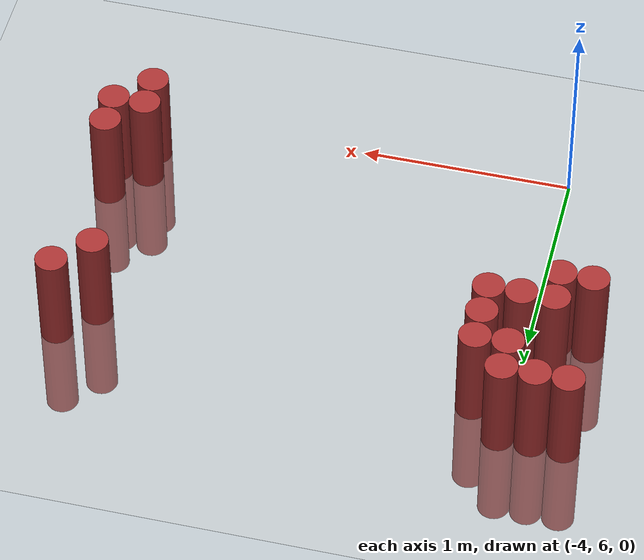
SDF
<sdf version="1.6">
 <world name="world_237">
  <model name="ground_plane">
   <static>1</static>
   <link name="link">
    <collision name="collision">
     <geometry><plane><normal>0 0 1</normal><size>100 100</size></plane></geometry>
     <surface><friction><ode><mu>100</mu><mu2>50</mu2></ode></friction></surface>
    </collision>
    <visual name="visual">
     <cast_shadows>0</cast_shadows>
     <geometry><plane><normal>0 0 1</normal><size>100 100</size></plane></geometry>
     <material>
      <script><uri>file://media/materials/scripts/gazebo.material</uri><name>Gazebo/Grey</name></script>
     </material>
    </visual>
   </link>
  </model>
  <model name="unit_cylinder_133">
   <static>1</static>
   <pose>-4.275000 6.975000 0.000000 0.000000 0.000000 0.000000</pose>
   <link name="link">
    <inertial>
     <mass>1</mass>
     <inertia><ixx>0.145833</ixx><ixy>0</ixy><ixz>0</ixz><iyy>0.145833</iyy><iyz>0</iyz><izz>0.125</izz></inertia>
    </inertial>
    <collision name="collision">
     <geometry><cylinder><radius>0.075000</radius><length>1</length></cylinder></geometry>
    </collision>
    <visual name="visual">
     <geometry><cylinder><radius>0.075000</radius><length>1</length></cylinder></geometry>
     <material>
      <ambient>0.648000 0.192000 0.192000 1</ambient>
      <diffuse>0.648000 0.192000 0.192000 1</diffuse>
     </material>
     <material>
      <script><name>Gazebo/Grey</name><uri>file://media/materials/scripts/gazebo.material</uri></script>
     </material>
    </visual>
   </link>
  </model>
  <model name="unit_cylinder_134">
   <static>1</static>
   <pose>-4.275000 7.575000 0.000000 0.000000 0.000000 0.000000</pose>
   <link name="link">
    <inertial>
     <mass>1</mass>
     <inertia><ixx>0.145833</ixx><ixy>0</ixy><ixz>0</ixz><iyy>0.145833</iyy><iyz>0</iyz><izz>0.125</izz></inertia>
    </inertial>
    <collision name="collision">
     <geometry><cylinder><radius>0.075000</radius><length>1</length></cylinder></geometry>
    </collision>
    <visual name="visual">
     <geometry><cylinder><radius>0.075000</radius><length>1</length></cylinder></geometry>
     <material>
      <ambient>0.648000 0.192000 0.192000 1</ambient>
      <diffuse>0.648000 0.192000 0.192000 1</diffuse>
     </material>
     <material>
      <script><name>Gazebo/Grey</name><uri>file://media/materials/scripts/gazebo.material</uri></script>
     </material>
    </visual>
   </link>
  </model>
  <model name="unit_cylinder_143">
   <static>1</static>
   <pose>-4.125000 6.975000 0.000000 0.000000 0.000000 0.000000</pose>
   <link name="link">
    <inertial>
     <mass>1</mass>
     <inertia><ixx>0.145833</ixx><ixy>0</ixy><ixz>0</ixz><iyy>0.145833</iyy><iyz>0</iyz><izz>0.125</izz></inertia>
    </inertial>
    <collision name="collision">
     <geometry><cylinder><radius>0.075000</radius><length>1</length></cylinder></geometry>
    </collision>
    <visual name="visual">
     <geometry><cylinder><radius>0.075000</radius><length>1</length></cylinder></geometry>
     <material>
      <ambient>0.648000 0.192000 0.192000 1</ambient>
      <diffuse>0.648000 0.192000 0.192000 1</diffuse>
     </material>
     <material>
      <script><name>Gazebo/Grey</name><uri>file://media/materials/scripts/gazebo.material</uri></script>
     </material>
    </visual>
   </link>
  </model>
  <model name="unit_cylinder_144">
   <static>1</static>
   <pose>-4.125000 7.125000 0.000000 0.000000 0.000000 0.000000</pose>
   <link name="link">
    <inertial>
     <mass>1</mass>
     <inertia><ixx>0.145833</ixx><ixy>0</ixy><ixz>0</ixz><iyy>0.145833</iyy><iyz>0</iyz><izz>0.125</izz></inertia>
    </inertial>
    <collision name="collision">
     <geometry><cylinder><radius>0.075000</radius><length>1</length></cylinder></geometry>
    </collision>
    <visual name="visual">
     <geometry><cylinder><radius>0.075000</radius><length>1</length></cylinder></geometry>
     <material>
      <ambient>0.648000 0.192000 0.192000 1</ambient>
      <diffuse>0.648000 0.192000 0.192000 1</diffuse>
     </material>
     <material>
      <script><name>Gazebo/Grey</name><uri>file://media/materials/scripts/gazebo.material</uri></script>
     </material>
    </visual>
   </link>
  </model>
  <model name="unit_cylinder_145">
   <static>1</static>
   <pose>-4.125000 7.575000 0.000000 0.000000 0.000000 0.000000</pose>
   <link name="link">
    <inertial>
     <mass>1</mass>
     <inertia><ixx>0.145833</ixx><ixy>0</ixy><ixz>0</ixz><iyy>0.145833</iyy><iyz>0</iyz><izz>0.125</izz></inertia>
    </inertial>
    <collision name="collision">
     <geometry><cylinder><radius>0.075000</radius><length>1</length></cylinder></geometry>
    </collision>
    <visual name="visual">
     <geometry><cylinder><radius>0.075000</radius><length>1</length></cylinder></geometry>
     <material>
      <ambient>0.648000 0.192000 0.192000 1</ambient>
      <diffuse>0.648000 0.192000 0.192000 1</diffuse>
     </material>
     <material>
      <script><name>Gazebo/Grey</name><uri>file://media/materials/scripts/gazebo.material</uri></script>
     </material>
    </visual>
   </link>
  </model>
  <model name="unit_cylinder_148">
   <static>1</static>
   <pose>-3.975000 7.125000 0.000000 0.000000 0.000000 0.000000</pose>
   <link name="link">
    <inertial>
     <mass>1</mass>
     <inertia><ixx>0.145833</ixx><ixy>0</ixy><ixz>0</ixz><iyy>0.145833</iyy><iyz>0</iyz><izz>0.125</izz></inertia>
    </inertial>
    <collision name="collision">
     <geometry><cylinder><radius>0.075000</radius><length>1</length></cylinder></geometry>
    </collision>
    <visual name="visual">
     <geometry><cylinder><radius>0.075000</radius><length>1</length></cylinder></geometry>
     <material>
      <ambient>0.648000 0.192000 0.192000 1</ambient>
      <diffuse>0.648000 0.192000 0.192000 1</diffuse>
     </material>
     <material>
      <script><name>Gazebo/Grey</name><uri>file://media/materials/scripts/gazebo.material</uri></script>
     </material>
    </visual>
   </link>
  </model>
  <model name="unit_cylinder_149">
   <static>1</static>
   <pose>-3.975000 7.425000 0.000000 0.000000 0.000000 0.000000</pose>
   <link name="link">
    <inertial>
     <mass>1</mass>
     <inertia><ixx>0.145833</ixx><ixy>0</ixy><ixz>0</ixz><iyy>0.145833</iyy><iyz>0</iyz><izz>0.125</izz></inertia>
    </inertial>
    <collision name="collision">
     <geometry><cylinder><radius>0.075000</radius><length>1</length></cylinder></geometry>
    </collision>
    <visual name="visual">
     <geometry><cylinder><radius>0.075000</radius><length>1</length></cylinder></geometry>
     <material>
      <ambient>0.648000 0.192000 0.192000 1</ambient>
      <diffuse>0.648000 0.192000 0.192000 1</diffuse>
     </material>
     <material>
      <script><name>Gazebo/Grey</name><uri>file://media/materials/scripts/gazebo.material</uri></script>
     </material>
    </visual>
   </link>
  </model>
  <model name="unit_cylinder_150">
   <static>1</static>
   <pose>-3.975000 7.575000 0.000000 0.000000 0.000000 0.000000</pose>
   <link name="link">
    <inertial>
     <mass>1</mass>
     <inertia><ixx>0.145833</ixx><ixy>0</ixy><ixz>0</ixz><iyy>0.145833</iyy><iyz>0</iyz><izz>0.125</izz></inertia>
    </inertial>
    <collision name="collision">
     <geometry><cylinder><radius>0.075000</radius><length>1</length></cylinder></geometry>
    </collision>
    <visual name="visual">
     <geometry><cylinder><radius>0.075000</radius><length>1</length></cylinder></geometry>
     <material>
      <ambient>0.648000 0.192000 0.192000 1</ambient>
      <diffuse>0.648000 0.192000 0.192000 1</diffuse>
     </material>
     <material>
      <script><name>Gazebo/Grey</name><uri>file://media/materials/scripts/gazebo.material</uri></script>
     </material>
    </visual>
   </link>
  </model>
  <model name="unit_cylinder_151">
   <static>1</static>
   <pose>-3.825000 7.125000 0.000000 0.000000 0.000000 0.000000</pose>
   <link name="link">
    <inertial>
     <mass>1</mass>
     <inertia><ixx>0.145833</ixx><ixy>0</ixy><ixz>0</ixz><iyy>0.145833</iyy><iyz>0</iyz><izz>0.125</izz></inertia>
    </inertial>
    <collision name="collision">
     <geometry><cylinder><radius>0.075000</radius><length>1</length></cylinder></geometry>
    </collision>
    <visual name="visual">
     <geometry><cylinder><radius>0.075000</radius><length>1</length></cylinder></geometry>
     <material>
      <ambient>0.648000 0.192000 0.192000 1</ambient>
      <diffuse>0.648000 0.192000 0.192000 1</diffuse>
     </material>
     <material>
      <script><name>Gazebo/Grey</name><uri>file://media/materials/scripts/gazebo.material</uri></script>
     </material>
    </visual>
   </link>
  </model>
  <model name="unit_cylinder_152">
   <static>1</static>
   <pose>-3.825000 7.275000 0.000000 0.000000 0.000000 0.000000</pose>
   <link name="link">
    <inertial>
     <mass>1</mass>
     <inertia><ixx>0.145833</ixx><ixy>0</ixy><ixz>0</ixz><iyy>0.145833</iyy><iyz>0</iyz><izz>0.125</izz></inertia>
    </inertial>
    <collision name="collision">
     <geometry><cylinder><radius>0.075000</radius><length>1</length></cylinder></geometry>
    </collision>
    <visual name="visual">
     <geometry><cylinder><radius>0.075000</radius><length>1</length></cylinder></geometry>
     <material>
      <ambient>0.648000 0.192000 0.192000 1</ambient>
      <diffuse>0.648000 0.192000 0.192000 1</diffuse>
     </material>
     <material>
      <script><name>Gazebo/Grey</name><uri>file://media/materials/scripts/gazebo.material</uri></script>
     </material>
    </visual>
   </link>
  </model>
  <model name="unit_cylinder_153">
   <static>1</static>
   <pose>-3.825000 7.425000 0.000000 0.000000 0.000000 0.000000</pose>
   <link name="link">
    <inertial>
     <mass>1</mass>
     <inertia><ixx>0.145833</ixx><ixy>0</ixy><ixz>0</ixz><iyy>0.145833</iyy><iyz>0</iyz><izz>0.125</izz></inertia>
    </inertial>
    <collision name="collision">
     <geometry><cylinder><radius>0.075000</radius><length>1</length></cylinder></geometry>
    </collision>
    <visual name="visual">
     <geometry><cylinder><radius>0.075000</radius><length>1</length></cylinder></geometry>
     <material>
      <ambient>0.648000 0.192000 0.192000 1</ambient>
      <diffuse>0.648000 0.192000 0.192000 1</diffuse>
     </material>
     <material>
      <script><name>Gazebo/Grey</name><uri>file://media/materials/scripts/gazebo.material</uri></script>
     </material>
    </visual>
   </link>
  </model>
  <model name="unit_cylinder_176">
   <static>1</static>
   <pose>-2.025000 6.225000 0.000000 0.000000 0.000000 0.000000</pose>
   <link name="link">
    <inertial>
     <mass>1</mass>
     <inertia><ixx>0.145833</ixx><ixy>0</ixy><ixz>0</ixz><iyy>0.145833</iyy><iyz>0</iyz><izz>0.125</izz></inertia>
    </inertial>
    <collision name="collision">
     <geometry><cylinder><radius>0.075000</radius><length>1</length></cylinder></geometry>
    </collision>
    <visual name="visual">
     <geometry><cylinder><radius>0.075000</radius><length>1</length></cylinder></geometry>
     <material>
      <ambient>0.648000 0.192000 0.192000 1</ambient>
      <diffuse>0.648000 0.192000 0.192000 1</diffuse>
     </material>
     <material>
      <script><name>Gazebo/Grey</name><uri>file://media/materials/scripts/gazebo.material</uri></script>
     </material>
    </visual>
   </link>
  </model>
  <model name="unit_cylinder_177">
   <static>1</static>
   <pose>-2.025000 6.375000 0.000000 0.000000 0.000000 0.000000</pose>
   <link name="link">
    <inertial>
     <mass>1</mass>
     <inertia><ixx>0.145833</ixx><ixy>0</ixy><ixz>0</ixz><iyy>0.145833</iyy><iyz>0</iyz><izz>0.125</izz></inertia>
    </inertial>
    <collision name="collision">
     <geometry><cylinder><radius>0.075000</radius><length>1</length></cylinder></geometry>
    </collision>
    <visual name="visual">
     <geometry><cylinder><radius>0.075000</radius><length>1</length></cylinder></geometry>
     <material>
      <ambient>0.648000 0.192000 0.192000 1</ambient>
      <diffuse>0.648000 0.192000 0.192000 1</diffuse>
     </material>
     <material>
      <script><name>Gazebo/Grey</name><uri>file://media/materials/scripts/gazebo.material</uri></script>
     </material>
    </visual>
   </link>
  </model>
  <model name="unit_cylinder_178">
   <static>1</static>
   <pose>-2.025000 7.275000 0.000000 0.000000 0.000000 0.000000</pose>
   <link name="link">
    <inertial>
     <mass>1</mass>
     <inertia><ixx>0.145833</ixx><ixy>0</ixy><ixz>0</ixz><iyy>0.145833</iyy><iyz>0</iyz><izz>0.125</izz></inertia>
    </inertial>
    <collision name="collision">
     <geometry><cylinder><radius>0.075000</radius><length>1</length></cylinder></geometry>
    </collision>
    <visual name="visual">
     <geometry><cylinder><radius>0.075000</radius><length>1</length></cylinder></geometry>
     <material>
      <ambient>0.648000 0.192000 0.192000 1</ambient>
      <diffuse>0.648000 0.192000 0.192000 1</diffuse>
     </material>
     <material>
      <script><name>Gazebo/Grey</name><uri>file://media/materials/scripts/gazebo.material</uri></script>
     </material>
    </visual>
   </link>
  </model>
  <model name="unit_cylinder_184">
   <static>1</static>
   <pose>-1.875000 6.375000 0.000000 0.000000 0.000000 0.000000</pose>
   <link name="link">
    <inertial>
     <mass>1</mass>
     <inertia><ixx>0.145833</ixx><ixy>0</ixy><ixz>0</ixz><iyy>0.145833</iyy><iyz>0</iyz><izz>0.125</izz></inertia>
    </inertial>
    <collision name="collision">
     <geometry><cylinder><radius>0.075000</radius><length>1</length></cylinder></geometry>
    </collision>
    <visual name="visual">
     <geometry><cylinder><radius>0.075000</radius><length>1</length></cylinder></geometry>
     <material>
      <ambient>0.648000 0.192000 0.192000 1</ambient>
      <diffuse>0.648000 0.192000 0.192000 1</diffuse>
     </material>
     <material>
      <script><name>Gazebo/Grey</name><uri>file://media/materials/scripts/gazebo.material</uri></script>
     </material>
    </visual>
   </link>
  </model>
  <model name="unit_cylinder_185">
   <static>1</static>
   <pose>-1.875000 6.525000 0.000000 0.000000 0.000000 0.000000</pose>
   <link name="link">
    <inertial>
     <mass>1</mass>
     <inertia><ixx>0.145833</ixx><ixy>0</ixy><ixz>0</ixz><iyy>0.145833</iyy><iyz>0</iyz><izz>0.125</izz></inertia>
    </inertial>
    <collision name="collision">
     <geometry><cylinder><radius>0.075000</radius><length>1</length></cylinder></geometry>
    </collision>
    <visual name="visual">
     <geometry><cylinder><radius>0.075000</radius><length>1</length></cylinder></geometry>
     <material>
      <ambient>0.648000 0.192000 0.192000 1</ambient>
      <diffuse>0.648000 0.192000 0.192000 1</diffuse>
     </material>
     <material>
      <script><name>Gazebo/Grey</name><uri>file://media/materials/scripts/gazebo.material</uri></script>
     </material>
    </visual>
   </link>
  </model>
  <model name="unit_cylinder_186">
   <static>1</static>
   <pose>-1.875000 7.425000 0.000000 0.000000 0.000000 0.000000</pose>
   <link name="link">
    <inertial>
     <mass>1</mass>
     <inertia><ixx>0.145833</ixx><ixy>0</ixy><ixz>0</ixz><iyy>0.145833</iyy><iyz>0</iyz><izz>0.125</izz></inertia>
    </inertial>
    <collision name="collision">
     <geometry><cylinder><radius>0.075000</radius><length>1</length></cylinder></geometry>
    </collision>
    <visual name="visual">
     <geometry><cylinder><radius>0.075000</radius><length>1</length></cylinder></geometry>
     <material>
      <ambient>0.648000 0.192000 0.192000 1</ambient>
      <diffuse>0.648000 0.192000 0.192000 1</diffuse>
     </material>
     <material>
      <script><name>Gazebo/Grey</name><uri>file://media/materials/scripts/gazebo.material</uri></script>
     </material>
    </visual>
   </link>
  </model>
 </world>
</sdf>
